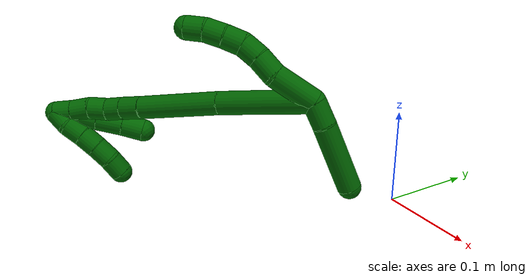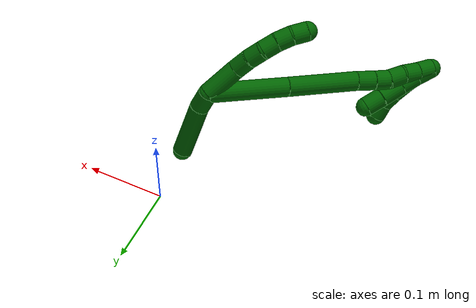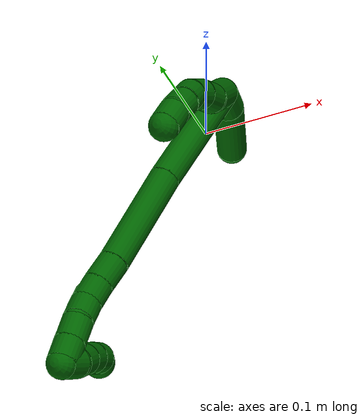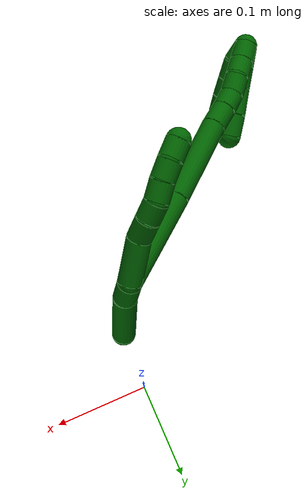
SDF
<sdf version="1.7">
 <world name="default">
  <model name="photoneo_s_sensor">
   <static>1</static>
   <pose>0 0 2 1.57079 1.57079 3.14159</pose>
   <link name="link">
    <inertial><mass>0.1</mass></inertial>
    <sensor name="sensor" type="depth">
     <update_rate>30</update_rate>
     <camera>
      <horizontal_fov>1.22</horizontal_fov>
      <image><width>1920</width><height>1200</height><format>B8G8R8</format></image>
      <clip><near>0.1</near><far>4</far></clip>
      <depth_camera><output>points</output></depth_camera>
     </camera>
     <plugin name="camera_plugin" filename="libgazebo_ros_depth_camera.so">
      <baseline>0.2</baseline>
      <alwaysOn>1</alwaysOn>
      <updateRate>0.0</updateRate>
      <cameraName>camera_ir</cameraName>
      <imageTopicName>/camera/color/image_raw</imageTopicName>
      <cameraInfoTopicName>/camera/color/camera_info</cameraInfoTopicName>
      <depthImageTopicName>/camera/depth/image_raw</depthImageTopicName>
      <depthImageCameraInfoTopicName>/camera/depth/camera_info</depthImageCameraInfoTopicName>
      <pointCloudTopicName>/camera/depth/points</pointCloudTopicName>
      <frameName>fr_optical</frameName>
      <pointCloudCutoff>0.1</pointCloudCutoff>
      <pointCloudCutoffMax>2.0</pointCloudCutoffMax>
      <distortionK1>0</distortionK1>
      <distortionK2>0</distortionK2>
      <distortionK3>0</distortionK3>
      <distortionT1>0</distortionT1>
      <distortionT2>0</distortionT2>
      <CxPrime>0</CxPrime>
      <Cx>0</Cx>
      <Cy>0</Cy>
      <focalLength>0</focalLength>
      <hackBaseline>0</hackBaseline>
     </plugin>
    </sensor>
   </link>
  </model>
  <model name="bin">
   <static>1</static>
   <link name="bottom">
    <collision name="collision-bottom">
     <pose>0 0 -0.01 0 -0 0</pose>
     <geometry><box><size>0.8 0.6 0.02</size></box></geometry>
     <surface>
      <friction><ode><mu>100</mu><mu2>100</mu2></ode></friction>
      <contact><collide_bitmask>65535</collide_bitmask></contact>
     </surface>
    </collision>
   </link>
   <link name="west_wall">
    <collision name="collision-west_wall">
     <pose>-0.41 0 0.1 0 -0 0</pose>
     <geometry><box><size>0.02 0.6 0.2</size></box></geometry>
     <surface>
      <friction><ode><mu>100</mu><mu2>100</mu2></ode></friction>
      <contact><collide_bitmask>65535</collide_bitmask></contact>
     </surface>
    </collision>
   </link>
   <link name="east_wall">
    <collision name="collision-east_wall">
     <pose>0.41 0 0.1 0 -0 0</pose>
     <geometry><box><size>0.02 0.6 0.2</size></box></geometry>
     <surface>
      <friction><ode><mu>100</mu><mu2>100</mu2></ode></friction>
      <contact><collide_bitmask>65535</collide_bitmask></contact>
     </surface>
    </collision>
   </link>
   <link name="south_wall">
    <collision name="collision-south_wall">
     <pose>0 -0.31 0.1 0 -0 0</pose>
     <geometry><box><size>0.8 0.02 0.2</size></box></geometry>
     <surface>
      <friction><ode><mu>100</mu><mu2>100</mu2></ode></friction>
      <contact><collide_bitmask>65535</collide_bitmask></contact>
     </surface>
    </collision>
   </link>
   <link name="north_wall">
    <collision name="collision-north_wall">
     <pose>0 0.31 0.1 0 -0 0</pose>
     <geometry><box><size>0.8 0.02 0.2</size></box></geometry>
     <surface>
      <friction><ode><mu>100</mu><mu2>100</mu2></ode></friction>
      <contact><collide_bitmask>65535</collide_bitmask></contact>
     </surface>
    </collision>
   </link>
  </model>
  <model name="6">
   <static>0</static>
   <link name="6">
    <collision name="collision-cylinder-e_1_2_8">
     <pose>0.001472 -0.007943 0.021973 0.346887 0.062901 0.011024</pose>
     <geometry><cylinder><radius>0.0125</radius><length>0.046822</length></cylinder></geometry>
     <surface>
      <friction><ode><mu>1.16</mu><mu2>1.16</mu2><slip1>0</slip1><slip2>0</slip2></ode></friction>
      <contact><ode><kp>1e+06</kp><kd>1</kd><max_vel>0</max_vel><min_depth>0.001</min_depth></ode></contact>
     </surface>
    </collision>
    <visual name="visual-cylinder-e_1_2_8">
     <pose>0.001472 -0.007943 0.021973 0.346887 0.062901 0.011024</pose>
     <geometry><cylinder><radius>0.0125</radius><length>0.046822</length></cylinder></geometry>
     <material><ambient>0 0.392157 0.003922 1</ambient></material>
    </visual>
    <collision name="collision-cylinder-e_2_8_9">
     <pose>0.003701 -0.016408 0.055449 0.045272 0.065752 0.001489</pose>
     <geometry><cylinder><radius>0.0125</radius><length>0.023079</length></cylinder></geometry>
     <surface>
      <friction><ode><mu>1.16</mu><mu2>1.16</mu2><slip1>0</slip1><slip2>0</slip2></ode></friction>
      <contact><ode><kp>1e+06</kp><kd>1</kd><max_vel>0</max_vel><min_depth>0.001</min_depth></ode></contact>
     </surface>
    </collision>
    <visual name="visual-cylinder-e_2_8_9">
     <pose>0.003701 -0.016408 0.055449 0.045272 0.065752 0.001489</pose>
     <geometry><cylinder><radius>0.0125</radius><length>0.023079</length></cylinder></geometry>
     <material><ambient>0 0.392157 0.003922 1</ambient></material>
    </visual>
    <collision name="collision-cylinder-e_3_9_10">
     <pose>0.003974 -0.018418 0.076864 0.149157 -0.04843 -0.003619</pose>
     <geometry><cylinder><radius>0.0125</radius><length>0.020069</length></cylinder></geometry>
     <surface>
      <friction><ode><mu>1.16</mu><mu2>1.16</mu2><slip1>0</slip1><slip2>0</slip2></ode></friction>
      <contact><ode><kp>1e+06</kp><kd>1</kd><max_vel>0</max_vel><min_depth>0.001</min_depth></ode></contact>
     </surface>
    </collision>
    <visual name="visual-cylinder-e_3_9_10">
     <pose>0.003974 -0.018418 0.076864 0.149157 -0.04843 -0.003619</pose>
     <geometry><cylinder><radius>0.0125</radius><length>0.020069</length></cylinder></geometry>
     <material><ambient>0 0.392157 0.003922 1</ambient></material>
    </visual>
    <collision name="collision-cylinder-e_4_10_11">
     <pose>0.002173 -0.024264 0.09569 0.454498 -0.131807 -0.030521</pose>
     <geometry><cylinder><radius>0.0125</radius><length>0.020017</length></cylinder></geometry>
     <surface>
      <friction><ode><mu>1.16</mu><mu2>1.16</mu2><slip1>0</slip1><slip2>0</slip2></ode></friction>
      <contact><ode><kp>1e+06</kp><kd>1</kd><max_vel>0</max_vel><min_depth>0.001</min_depth></ode></contact>
     </surface>
    </collision>
    <visual name="visual-cylinder-e_4_10_11">
     <pose>0.002173 -0.024264 0.09569 0.454498 -0.131807 -0.030521</pose>
     <geometry><cylinder><radius>0.0125</radius><length>0.020017</length></cylinder></geometry>
     <material><ambient>0 0.392157 0.003922 1</ambient></material>
    </visual>
    <collision name="collision-cylinder-e_5_11_12">
     <pose>-0.001686 -0.032906 0.113275 0.459094 -0.257099 -0.06039</pose>
     <geometry><cylinder><radius>0.0125</radius><length>0.020002</length></cylinder></geometry>
     <surface>
      <friction><ode><mu>1.16</mu><mu2>1.16</mu2><slip1>0</slip1><slip2>0</slip2></ode></friction>
      <contact><ode><kp>1e+06</kp><kd>1</kd><max_vel>0</max_vel><min_depth>0.001</min_depth></ode></contact>
     </surface>
    </collision>
    <visual name="visual-cylinder-e_5_11_12">
     <pose>-0.001686 -0.032906 0.113275 0.459094 -0.257099 -0.06039</pose>
     <geometry><cylinder><radius>0.0125</radius><length>0.020002</length></cylinder></geometry>
     <material><ambient>0 0.392157 0.003922 1</ambient></material>
    </visual>
    <collision name="collision-cylinder-e_6_12_6">
     <pose>-0.008397 -0.042358 0.129431 0.604115 -0.42976 -0.135801</pose>
     <geometry><cylinder><radius>0.0125</radius><length>0.02001</length></cylinder></geometry>
     <surface>
      <friction><ode><mu>1.16</mu><mu2>1.16</mu2><slip1>0</slip1><slip2>0</slip2></ode></friction>
      <contact><ode><kp>1e+06</kp><kd>1</kd><max_vel>0</max_vel><min_depth>0.001</min_depth></ode></contact>
     </surface>
    </collision>
    <visual name="visual-cylinder-e_6_12_6">
     <pose>-0.008397 -0.042358 0.129431 0.604115 -0.42976 -0.135801</pose>
     <geometry><cylinder><radius>0.0125</radius><length>0.02001</length></cylinder></geometry>
     <material><ambient>0 0.392157 0.003922 1</ambient></material>
    </visual>
    <collision name="collision-cylinder-e_1_2_13">
     <pose>-0.004821 -0.001552 -0.01213 3.01435 -0.375538 -2.49459</pose>
     <geometry><cylinder><radius>0.0125</radius><length>0.026289</length></cylinder></geometry>
     <surface>
      <friction><ode><mu>1.16</mu><mu2>1.16</mu2><slip1>0</slip1><slip2>0</slip2></ode></friction>
      <contact><ode><kp>1e+06</kp><kd>1</kd><max_vel>0</max_vel><min_depth>0.001</min_depth></ode></contact>
     </surface>
    </collision>
    <visual name="visual-cylinder-e_1_2_13">
     <pose>-0.004821 -0.001552 -0.01213 3.01435 -0.375538 -2.49459</pose>
     <geometry><cylinder><radius>0.0125</radius><length>0.026289</length></cylinder></geometry>
     <material><ambient>0 0.392157 0.003922 1</ambient></material>
    </visual>
    <collision name="collision-cylinder-e_2_13_5">
     <pose>-0.027973 -0.0055 -0.056143 3.06656 -0.520567 -2.86159</pose>
     <geometry><cylinder><radius>0.0125</radius><length>0.073711</length></cylinder></geometry>
     <surface>
      <friction><ode><mu>1.16</mu><mu2>1.16</mu2><slip1>0</slip1><slip2>0</slip2></ode></friction>
      <contact><ode><kp>1e+06</kp><kd>1</kd><max_vel>0</max_vel><min_depth>0.001</min_depth></ode></contact>
     </surface>
    </collision>
    <visual name="visual-cylinder-e_2_13_5">
     <pose>-0.027973 -0.0055 -0.056143 3.06656 -0.520567 -2.86159</pose>
     <geometry><cylinder><radius>0.0125</radius><length>0.073711</length></cylinder></geometry>
     <material><ambient>0 0.392157 0.003922 1</ambient></material>
    </visual>
    <collision name="collision-cylinder-e_1_2_14">
     <pose>-0.029795 -0.026014 0.032229 0.679096 -0.623603 -0.226725</pose>
     <geometry><cylinder><radius>0.0125</radius><length>0.102042</length></cylinder></geometry>
     <surface>
      <friction><ode><mu>1.16</mu><mu2>1.16</mu2><slip1>0</slip1><slip2>0</slip2></ode></friction>
      <contact><ode><kp>1e+06</kp><kd>1</kd><max_vel>0</max_vel><min_depth>0.001</min_depth></ode></contact>
     </surface>
    </collision>
    <visual name="visual-cylinder-e_1_2_14">
     <pose>-0.029795 -0.026014 0.032229 0.679096 -0.623603 -0.226725</pose>
     <geometry><cylinder><radius>0.0125</radius><length>0.102042</length></cylinder></geometry>
     <material><ambient>0 0.392157 0.003922 1</ambient></material>
    </visual>
    <collision name="collision-cylinder-e_2_14_15">
     <pose>-0.086264 -0.077052 0.092237 0.733267 -0.61971 -0.244658</pose>
     <geometry><cylinder><radius>0.0125</radius><length>0.091856</length></cylinder></geometry>
     <surface>
      <friction><ode><mu>1.16</mu><mu2>1.16</mu2><slip1>0</slip1><slip2>0</slip2></ode></friction>
      <contact><ode><kp>1e+06</kp><kd>1</kd><max_vel>0</max_vel><min_depth>0.001</min_depth></ode></contact>
     </surface>
    </collision>
    <visual name="visual-cylinder-e_2_14_15">
     <pose>-0.086264 -0.077052 0.092237 0.733267 -0.61971 -0.244658</pose>
     <geometry><cylinder><radius>0.0125</radius><length>0.091856</length></cylinder></geometry>
     <material><ambient>0 0.392157 0.003922 1</ambient></material>
    </visual>
    <collision name="collision-cylinder-e_3_15_16">
     <pose>-0.120345 -0.107917 0.12728 0.677244 -0.671342 -0.244512</pose>
     <geometry><cylinder><radius>0.0125</radius><length>0.023811</length></cylinder></geometry>
     <surface>
      <friction><ode><mu>1.16</mu><mu2>1.16</mu2><slip1>0</slip1><slip2>0</slip2></ode></friction>
      <contact><ode><kp>1e+06</kp><kd>1</kd><max_vel>0</max_vel><min_depth>0.001</min_depth></ode></contact>
     </surface>
    </collision>
    <visual name="visual-cylinder-e_3_15_16">
     <pose>-0.120345 -0.107917 0.12728 0.677244 -0.671342 -0.244512</pose>
     <geometry><cylinder><radius>0.0125</radius><length>0.023811</length></cylinder></geometry>
     <material><ambient>0 0.392157 0.003922 1</ambient></material>
    </visual>
    <collision name="collision-cylinder-e_4_16_17">
     <pose>-0.133758 -0.119168 0.140521 0.735678 -0.640433 -0.254228</pose>
     <geometry><cylinder><radius>0.0125</radius><length>0.020106</length></cylinder></geometry>
     <surface>
      <friction><ode><mu>1.16</mu><mu2>1.16</mu2><slip1>0</slip1><slip2>0</slip2></ode></friction>
      <contact><ode><kp>1e+06</kp><kd>1</kd><max_vel>0</max_vel><min_depth>0.001</min_depth></ode></contact>
     </surface>
    </collision>
    <visual name="visual-cylinder-e_4_16_17">
     <pose>-0.133758 -0.119168 0.140521 0.735678 -0.640433 -0.254228</pose>
     <geometry><cylinder><radius>0.0125</radius><length>0.020106</length></cylinder></geometry>
     <material><ambient>0 0.392157 0.003922 1</ambient></material>
    </visual>
    <collision name="collision-cylinder-e_5_17_18">
     <pose>-0.14365 -0.130784 0.153681 0.712534 -0.388429 -0.146137</pose>
     <geometry><cylinder><radius>0.0125</radius><length>0.020515</length></cylinder></geometry>
     <surface>
      <friction><ode><mu>1.16</mu><mu2>1.16</mu2><slip1>0</slip1><slip2>0</slip2></ode></friction>
      <contact><ode><kp>1e+06</kp><kd>1</kd><max_vel>0</max_vel><min_depth>0.001</min_depth></ode></contact>
     </surface>
    </collision>
    <visual name="visual-cylinder-e_5_17_18">
     <pose>-0.14365 -0.130784 0.153681 0.712534 -0.388429 -0.146137</pose>
     <geometry><cylinder><radius>0.0125</radius><length>0.020515</length></cylinder></geometry>
     <material><ambient>0 0.392157 0.003922 1</ambient></material>
    </visual>
    <collision name="collision-cylinder-e_6_18_19">
     <pose>-0.152909 -0.144088 0.166417 0.906919 -0.537818 -0.267002</pose>
     <geometry><cylinder><radius>0.0125</radius><length>0.020984</length></cylinder></geometry>
     <surface>
      <friction><ode><mu>1.16</mu><mu2>1.16</mu2><slip1>0</slip1><slip2>0</slip2></ode></friction>
      <contact><ode><kp>1e+06</kp><kd>1</kd><max_vel>0</max_vel><min_depth>0.001</min_depth></ode></contact>
     </surface>
    </collision>
    <visual name="visual-cylinder-e_6_18_19">
     <pose>-0.152909 -0.144088 0.166417 0.906919 -0.537818 -0.267002</pose>
     <geometry><cylinder><radius>0.0125</radius><length>0.020984</length></cylinder></geometry>
     <material><ambient>0 0.392157 0.003922 1</ambient></material>
    </visual>
    <collision name="collision-cylinder-e_7_19_1">
     <pose>-0.162945 -0.158074 0.178116 0.842314 -0.467518 -0.212526</pose>
     <geometry><cylinder><radius>0.0125</radius><length>0.020685</length></cylinder></geometry>
     <surface>
      <friction><ode><mu>1.16</mu><mu2>1.16</mu2><slip1>0</slip1><slip2>0</slip2></ode></friction>
      <contact><ode><kp>1e+06</kp><kd>1</kd><max_vel>0</max_vel><min_depth>0.001</min_depth></ode></contact>
     </surface>
    </collision>
    <visual name="visual-cylinder-e_7_19_1">
     <pose>-0.162945 -0.158074 0.178116 0.842314 -0.467518 -0.212526</pose>
     <geometry><cylinder><radius>0.0125</radius><length>0.020685</length></cylinder></geometry>
     <material><ambient>0 0.392157 0.003922 1</ambient></material>
    </visual>
    <collision name="collision-cylinder-e_1_1_20">
     <pose>-0.164692 -0.157342 0.175552 -2.42274 0.246647 -0.637281</pose>
     <geometry><cylinder><radius>0.0125</radius><length>0.02387</length></cylinder></geometry>
     <surface>
      <friction><ode><mu>1.16</mu><mu2>1.16</mu2><slip1>0</slip1><slip2>0</slip2></ode></friction>
      <contact><ode><kp>1e+06</kp><kd>1</kd><max_vel>0</max_vel><min_depth>0.001</min_depth></ode></contact>
     </surface>
    </collision>
    <visual name="visual-cylinder-e_1_1_20">
     <pose>-0.164692 -0.157342 0.175552 -2.42274 0.246647 -0.637281</pose>
     <geometry><cylinder><radius>0.0125</radius><length>0.02387</length></cylinder></geometry>
     <material><ambient>0 0.392157 0.003922 1</ambient></material>
    </visual>
    <collision name="collision-cylinder-e_2_20_21">
     <pose>-0.159852 -0.14295 0.157695 -2.50449 0.167679 -0.499029</pose>
     <geometry><cylinder><radius>0.0125</radius><length>0.023084</length></cylinder></geometry>
     <surface>
      <friction><ode><mu>1.16</mu><mu2>1.16</mu2><slip1>0</slip1><slip2>0</slip2></ode></friction>
      <contact><ode><kp>1e+06</kp><kd>1</kd><max_vel>0</max_vel><min_depth>0.001</min_depth></ode></contact>
     </surface>
    </collision>
    <visual name="visual-cylinder-e_2_20_21">
     <pose>-0.159852 -0.14295 0.157695 -2.50449 0.167679 -0.499029</pose>
     <geometry><cylinder><radius>0.0125</radius><length>0.023084</length></cylinder></geometry>
     <material><ambient>0 0.392157 0.003922 1</ambient></material>
    </visual>
    <collision name="collision-cylinder-e_3_21_22">
     <pose>-0.155693 -0.127482 0.137117 -2.49104 0.15417 -0.450274</pose>
     <geometry><cylinder><radius>0.0125</radius><length>0.029073</length></cylinder></geometry>
     <surface>
      <friction><ode><mu>1.16</mu><mu2>1.16</mu2><slip1>0</slip1><slip2>0</slip2></ode></friction>
      <contact><ode><kp>1e+06</kp><kd>1</kd><max_vel>0</max_vel><min_depth>0.001</min_depth></ode></contact>
     </surface>
    </collision>
    <visual name="visual-cylinder-e_3_21_22">
     <pose>-0.155693 -0.127482 0.137117 -2.49104 0.15417 -0.450274</pose>
     <geometry><cylinder><radius>0.0125</radius><length>0.029073</length></cylinder></geometry>
     <material><ambient>0 0.392157 0.003922 1</ambient></material>
    </visual>
    <collision name="collision-cylinder-e_4_22_4">
     <pose>-0.151541 -0.1122 0.115855 -2.55166 0.160863 -0.518649</pose>
     <geometry><cylinder><radius>0.0125</radius><length>0.023973</length></cylinder></geometry>
     <surface>
      <friction><ode><mu>1.16</mu><mu2>1.16</mu2><slip1>0</slip1><slip2>0</slip2></ode></friction>
      <contact><ode><kp>1e+06</kp><kd>1</kd><max_vel>0</max_vel><min_depth>0.001</min_depth></ode></contact>
     </surface>
    </collision>
    <visual name="visual-cylinder-e_4_22_4">
     <pose>-0.151541 -0.1122 0.115855 -2.55166 0.160863 -0.518649</pose>
     <geometry><cylinder><radius>0.0125</radius><length>0.023973</length></cylinder></geometry>
     <material><ambient>0 0.392157 0.003922 1</ambient></material>
    </visual>
    <collision name="collision-cylinder-e_1_1_23">
     <pose>-0.166349 -0.164702 0.174345 -3.11531 0.126017 -2.73095</pose>
     <geometry><cylinder><radius>0.0125</radius><length>0.02</length></cylinder></geometry>
     <surface>
      <friction><ode><mu>1.16</mu><mu2>1.16</mu2><slip1>0</slip1><slip2>0</slip2></ode></friction>
      <contact><ode><kp>1e+06</kp><kd>1</kd><max_vel>0</max_vel><min_depth>0.001</min_depth></ode></contact>
     </surface>
    </collision>
    <visual name="visual-cylinder-e_1_1_23">
     <pose>-0.166349 -0.164702 0.174345 -3.11531 0.126017 -2.73095</pose>
     <geometry><cylinder><radius>0.0125</radius><length>0.02</length></cylinder></geometry>
     <material><ambient>0 0.392157 0.003922 1</ambient></material>
    </visual>
    <collision name="collision-cylinder-e_2_23_24">
     <pose>-0.16541 -0.161775 0.154795 -2.87147 -0.031808 0.233026</pose>
     <geometry><cylinder><radius>0.0125</radius><length>0.02</length></cylinder></geometry>
     <surface>
      <friction><ode><mu>1.16</mu><mu2>1.16</mu2><slip1>0</slip1><slip2>0</slip2></ode></friction>
      <contact><ode><kp>1e+06</kp><kd>1</kd><max_vel>0</max_vel><min_depth>0.001</min_depth></ode></contact>
     </surface>
    </collision>
    <visual name="visual-cylinder-e_2_23_24">
     <pose>-0.16541 -0.161775 0.154795 -2.87147 -0.031808 0.233026</pose>
     <geometry><cylinder><radius>0.0125</radius><length>0.02</length></cylinder></geometry>
     <material><ambient>0 0.392157 0.003922 1</ambient></material>
    </visual>
    <collision name="collision-cylinder-e_3_24_25">
     <pose>-0.166557 -0.15698 0.135427 -2.92642 -0.08293 0.733529</pose>
     <geometry><cylinder><radius>0.0125</radius><length>0.02</length></cylinder></geometry>
     <surface>
      <friction><ode><mu>1.16</mu><mu2>1.16</mu2><slip1>0</slip1><slip2>0</slip2></ode></friction>
      <contact><ode><kp>1e+06</kp><kd>1</kd><max_vel>0</max_vel><min_depth>0.001</min_depth></ode></contact>
     </surface>
    </collision>
    <visual name="visual-cylinder-e_3_24_25">
     <pose>-0.166557 -0.15698 0.135427 -2.92642 -0.08293 0.733529</pose>
     <geometry><cylinder><radius>0.0125</radius><length>0.02</length></cylinder></geometry>
     <material><ambient>0 0.392157 0.003922 1</ambient></material>
    </visual>
    <collision name="collision-cylinder-e_4_25_26">
     <pose>-0.16905 -0.152962 0.116013 -2.9488 -0.167305 1.4287</pose>
     <geometry><cylinder><radius>0.0125</radius><length>0.02</length></cylinder></geometry>
     <surface>
      <friction><ode><mu>1.16</mu><mu2>1.16</mu2><slip1>0</slip1><slip2>0</slip2></ode></friction>
      <contact><ode><kp>1e+06</kp><kd>1</kd><max_vel>0</max_vel><min_depth>0.001</min_depth></ode></contact>
     </surface>
    </collision>
    <visual name="visual-cylinder-e_4_25_26">
     <pose>-0.16905 -0.152962 0.116013 -2.9488 -0.167305 1.4287</pose>
     <geometry><cylinder><radius>0.0125</radius><length>0.02</length></cylinder></geometry>
     <material><ambient>0 0.392157 0.003922 1</ambient></material>
    </visual>
    <collision name="collision-cylinder-e_5_26_3">
     <pose>-0.174869 -0.149638 0.097353 -2.98321 -0.428318 2.44188</pose>
     <geometry><cylinder><radius>0.0125</radius><length>0.02</length></cylinder></geometry>
     <surface>
      <friction><ode><mu>1.16</mu><mu2>1.16</mu2><slip1>0</slip1><slip2>0</slip2></ode></friction>
      <contact><ode><kp>1e+06</kp><kd>1</kd><max_vel>0</max_vel><min_depth>0.001</min_depth></ode></contact>
     </surface>
    </collision>
    <visual name="visual-cylinder-e_5_26_3">
     <pose>-0.174869 -0.149638 0.097353 -2.98321 -0.428318 2.44188</pose>
     <geometry><cylinder><radius>0.0125</radius><length>0.02</length></cylinder></geometry>
     <material><ambient>0 0.392157 0.003922 1</ambient></material>
    </visual>
    <collision name="collision-sphere-3">
     <pose>-0.179022 -0.148204 0.08837 0 -0 0</pose>
     <geometry><sphere><radius>0.0125</radius></sphere></geometry>
     <surface>
      <friction><ode><mu>1.16</mu><mu2>1.16</mu2><slip1>0</slip1><slip2>0</slip2></ode></friction>
      <contact><ode><kp>1e+06</kp><kd>1</kd><max_vel>0</max_vel><min_depth>0.001</min_depth></ode></contact>
     </surface>
    </collision>
    <visual name="visual-sphere-3">
     <pose>-0.179022 -0.148204 0.08837 0 -0 0</pose>
     <geometry><sphere><radius>0.0125</radius></sphere></geometry>
     <material><ambient>0 0.392157 0.003922 1</ambient></material>
    </visual>
    <collision name="collision-sphere-26">
     <pose>-0.170716 -0.151073 0.106335 0 -0 0</pose>
     <geometry><sphere><radius>0.0125</radius></sphere></geometry>
     <surface>
      <friction><ode><mu>1.16</mu><mu2>1.16</mu2><slip1>0</slip1><slip2>0</slip2></ode></friction>
      <contact><ode><kp>1e+06</kp><kd>1</kd><max_vel>0</max_vel><min_depth>0.001</min_depth></ode></contact>
     </surface>
    </collision>
    <visual name="visual-sphere-26">
     <pose>-0.170716 -0.151073 0.106335 0 -0 0</pose>
     <geometry><sphere><radius>0.0125</radius></sphere></geometry>
     <material><ambient>0 0.392157 0.003922 1</ambient></material>
    </visual>
    <collision name="collision-sphere-25">
     <pose>-0.167385 -0.154852 0.125691 0 -0 0</pose>
     <geometry><sphere><radius>0.0125</radius></sphere></geometry>
     <surface>
      <friction><ode><mu>1.16</mu><mu2>1.16</mu2><slip1>0</slip1><slip2>0</slip2></ode></friction>
      <contact><ode><kp>1e+06</kp><kd>1</kd><max_vel>0</max_vel><min_depth>0.001</min_depth></ode></contact>
     </surface>
    </collision>
    <visual name="visual-sphere-25">
     <pose>-0.167385 -0.154852 0.125691 0 -0 0</pose>
     <geometry><sphere><radius>0.0125</radius></sphere></geometry>
     <material><ambient>0 0.392157 0.003922 1</ambient></material>
    </visual>
    <collision name="collision-sphere-24">
     <pose>-0.165728 -0.159107 0.145163 0 -0 0</pose>
     <geometry><sphere><radius>0.0125</radius></sphere></geometry>
     <surface>
      <friction><ode><mu>1.16</mu><mu2>1.16</mu2><slip1>0</slip1><slip2>0</slip2></ode></friction>
      <contact><ode><kp>1e+06</kp><kd>1</kd><max_vel>0</max_vel><min_depth>0.001</min_depth></ode></contact>
     </surface>
    </collision>
    <visual name="visual-sphere-24">
     <pose>-0.165728 -0.159107 0.145163 0 -0 0</pose>
     <geometry><sphere><radius>0.0125</radius></sphere></geometry>
     <material><ambient>0 0.392157 0.003922 1</ambient></material>
    </visual>
    <collision name="collision-sphere-23">
     <pose>-0.165092 -0.164442 0.164427 0 -0 0</pose>
     <geometry><sphere><radius>0.0125</radius></sphere></geometry>
     <surface>
      <friction><ode><mu>1.16</mu><mu2>1.16</mu2><slip1>0</slip1><slip2>0</slip2></ode></friction>
      <contact><ode><kp>1e+06</kp><kd>1</kd><max_vel>0</max_vel><min_depth>0.001</min_depth></ode></contact>
     </surface>
    </collision>
    <visual name="visual-sphere-23">
     <pose>-0.165092 -0.164442 0.164427 0 -0 0</pose>
     <geometry><sphere><radius>0.0125</radius></sphere></geometry>
     <material><ambient>0 0.392157 0.003922 1</ambient></material>
    </visual>
    <collision name="collision-sphere-4">
     <pose>-0.149621 -0.105618 0.106023 0 -0 0</pose>
     <geometry><sphere><radius>0.0125</radius></sphere></geometry>
     <surface>
      <friction><ode><mu>1.16</mu><mu2>1.16</mu2><slip1>0</slip1><slip2>0</slip2></ode></friction>
      <contact><ode><kp>1e+06</kp><kd>1</kd><max_vel>0</max_vel><min_depth>0.001</min_depth></ode></contact>
     </surface>
    </collision>
    <visual name="visual-sphere-4">
     <pose>-0.149621 -0.105618 0.106023 0 -0 0</pose>
     <geometry><sphere><radius>0.0125</radius></sphere></geometry>
     <material><ambient>0 0.392157 0.003922 1</ambient></material>
    </visual>
    <collision name="collision-sphere-22">
     <pose>-0.153461 -0.118782 0.125687 0 -0 0</pose>
     <geometry><sphere><radius>0.0125</radius></sphere></geometry>
     <surface>
      <friction><ode><mu>1.16</mu><mu2>1.16</mu2><slip1>0</slip1><slip2>0</slip2></ode></friction>
      <contact><ode><kp>1e+06</kp><kd>1</kd><max_vel>0</max_vel><min_depth>0.001</min_depth></ode></contact>
     </surface>
    </collision>
    <visual name="visual-sphere-22">
     <pose>-0.153461 -0.118782 0.125687 0 -0 0</pose>
     <geometry><sphere><radius>0.0125</radius></sphere></geometry>
     <material><ambient>0 0.392157 0.003922 1</ambient></material>
    </visual>
    <collision name="collision-sphere-21">
     <pose>-0.157926 -0.136181 0.148547 0 -0 0</pose>
     <geometry><sphere><radius>0.0125</radius></sphere></geometry>
     <surface>
      <friction><ode><mu>1.16</mu><mu2>1.16</mu2><slip1>0</slip1><slip2>0</slip2></ode></friction>
      <contact><ode><kp>1e+06</kp><kd>1</kd><max_vel>0</max_vel><min_depth>0.001</min_depth></ode></contact>
     </surface>
    </collision>
    <visual name="visual-sphere-21">
     <pose>-0.157926 -0.136181 0.148547 0 -0 0</pose>
     <geometry><sphere><radius>0.0125</radius></sphere></geometry>
     <material><ambient>0 0.392157 0.003922 1</ambient></material>
    </visual>
    <collision name="collision-sphere-20">
     <pose>-0.161778 -0.14972 0.166842 0 -0 0</pose>
     <geometry><sphere><radius>0.0125</radius></sphere></geometry>
     <surface>
      <friction><ode><mu>1.16</mu><mu2>1.16</mu2><slip1>0</slip1><slip2>0</slip2></ode></friction>
      <contact><ode><kp>1e+06</kp><kd>1</kd><max_vel>0</max_vel><min_depth>0.001</min_depth></ode></contact>
     </surface>
    </collision>
    <visual name="visual-sphere-20">
     <pose>-0.161778 -0.14972 0.166842 0 -0 0</pose>
     <geometry><sphere><radius>0.0125</radius></sphere></geometry>
     <material><ambient>0 0.392157 0.003922 1</ambient></material>
    </visual>
    <collision name="collision-sphere-12">
     <pose>-0.004229 -0.037192 0.121946 0 -0 0</pose>
     <geometry><sphere><radius>0.0125</radius></sphere></geometry>
     <surface>
      <friction><ode><mu>1.16</mu><mu2>1.16</mu2><slip1>0</slip1><slip2>0</slip2></ode></friction>
      <contact><ode><kp>1e+06</kp><kd>1</kd><max_vel>0</max_vel><min_depth>0.001</min_depth></ode></contact>
     </surface>
    </collision>
    <visual name="visual-sphere-12">
     <pose>-0.004229 -0.037192 0.121946 0 -0 0</pose>
     <geometry><sphere><radius>0.0125</radius></sphere></geometry>
     <material><ambient>0 0.392157 0.003922 1</ambient></material>
    </visual>
    <collision name="collision-sphere-11">
     <pose>0.000857 -0.028619 0.104604 0 -0 0</pose>
     <geometry><sphere><radius>0.0125</radius></sphere></geometry>
     <surface>
      <friction><ode><mu>1.16</mu><mu2>1.16</mu2><slip1>0</slip1><slip2>0</slip2></ode></friction>
      <contact><ode><kp>1e+06</kp><kd>1</kd><max_vel>0</max_vel><min_depth>0.001</min_depth></ode></contact>
     </surface>
    </collision>
    <visual name="visual-sphere-11">
     <pose>0.000857 -0.028619 0.104604 0 -0 0</pose>
     <geometry><sphere><radius>0.0125</radius></sphere></geometry>
     <material><ambient>0 0.392157 0.003922 1</ambient></material>
    </visual>
    <collision name="collision-sphere-10">
     <pose>0.003488 -0.019908 0.086776 0 -0 0</pose>
     <geometry><sphere><radius>0.0125</radius></sphere></geometry>
     <surface>
      <friction><ode><mu>1.16</mu><mu2>1.16</mu2><slip1>0</slip1><slip2>0</slip2></ode></friction>
      <contact><ode><kp>1e+06</kp><kd>1</kd><max_vel>0</max_vel><min_depth>0.001</min_depth></ode></contact>
     </surface>
    </collision>
    <visual name="visual-sphere-10">
     <pose>0.003488 -0.019908 0.086776 0 -0 0</pose>
     <geometry><sphere><radius>0.0125</radius></sphere></geometry>
     <material><ambient>0 0.392157 0.003922 1</ambient></material>
    </visual>
    <collision name="collision-sphere-9">
     <pose>0.00446 -0.016929 0.066952 0 -0 0</pose>
     <geometry><sphere><radius>0.0125</radius></sphere></geometry>
     <surface>
      <friction><ode><mu>1.16</mu><mu2>1.16</mu2><slip1>0</slip1><slip2>0</slip2></ode></friction>
      <contact><ode><kp>1e+06</kp><kd>1</kd><max_vel>0</max_vel><min_depth>0.001</min_depth></ode></contact>
     </surface>
    </collision>
    <visual name="visual-sphere-9">
     <pose>0.00446 -0.016929 0.066952 0 -0 0</pose>
     <geometry><sphere><radius>0.0125</radius></sphere></geometry>
     <material><ambient>0 0.392157 0.003922 1</ambient></material>
    </visual>
    <collision name="collision-sphere-2">
     <geometry><sphere><radius>0.0125</radius></sphere></geometry>
     <surface>
      <friction><ode><mu>1.16</mu><mu2>1.16</mu2><slip1>0</slip1><slip2>0</slip2></ode></friction>
      <contact><ode><kp>1e+06</kp><kd>1</kd><max_vel>0</max_vel><min_depth>0.001</min_depth></ode></contact>
     </surface>
    </collision>
    <visual name="visual-sphere-2">
     <geometry><sphere><radius>0.0125</radius></sphere></geometry>
     <material><ambient>0 0.392157 0.003922 1</ambient></material>
    </visual>
    <collision name="collision-sphere-19">
     <pose>-0.158284 -0.151185 0.171969 0 -0 0</pose>
     <geometry><sphere><radius>0.0125</radius></sphere></geometry>
     <surface>
      <friction><ode><mu>1.16</mu><mu2>1.16</mu2><slip1>0</slip1><slip2>0</slip2></ode></friction>
      <contact><ode><kp>1e+06</kp><kd>1</kd><max_vel>0</max_vel><min_depth>0.001</min_depth></ode></contact>
     </surface>
    </collision>
    <visual name="visual-sphere-19">
     <pose>-0.158284 -0.151185 0.171969 0 -0 0</pose>
     <geometry><sphere><radius>0.0125</radius></sphere></geometry>
     <material><ambient>0 0.392157 0.003922 1</ambient></material>
    </visual>
    <collision name="collision-sphere-8">
     <pose>0.002943 -0.015887 0.043946 0 -0 0</pose>
     <geometry><sphere><radius>0.0125</radius></sphere></geometry>
     <surface>
      <friction><ode><mu>1.16</mu><mu2>1.16</mu2><slip1>0</slip1><slip2>0</slip2></ode></friction>
      <contact><ode><kp>1e+06</kp><kd>1</kd><max_vel>0</max_vel><min_depth>0.001</min_depth></ode></contact>
     </surface>
    </collision>
    <visual name="visual-sphere-8">
     <pose>0.002943 -0.015887 0.043946 0 -0 0</pose>
     <geometry><sphere><radius>0.0125</radius></sphere></geometry>
     <material><ambient>0 0.392157 0.003922 1</ambient></material>
    </visual>
    <collision name="collision-sphere-6">
     <pose>-0.012566 -0.047524 0.136917 0 -0 0</pose>
     <geometry><sphere><radius>0.0125</radius></sphere></geometry>
     <surface>
      <friction><ode><mu>1.16</mu><mu2>1.16</mu2><slip1>0</slip1><slip2>0</slip2></ode></friction>
      <contact><ode><kp>1e+06</kp><kd>1</kd><max_vel>0</max_vel><min_depth>0.001</min_depth></ode></contact>
     </surface>
    </collision>
    <visual name="visual-sphere-6">
     <pose>-0.012566 -0.047524 0.136917 0 -0 0</pose>
     <geometry><sphere><radius>0.0125</radius></sphere></geometry>
     <material><ambient>0 0.392157 0.003922 1</ambient></material>
    </visual>
    <collision name="collision-sphere-13">
     <pose>-0.009642 -0.003103 -0.024259 0 -0 0</pose>
     <geometry><sphere><radius>0.0125</radius></sphere></geometry>
     <surface>
      <friction><ode><mu>1.16</mu><mu2>1.16</mu2><slip1>0</slip1><slip2>0</slip2></ode></friction>
      <contact><ode><kp>1e+06</kp><kd>1</kd><max_vel>0</max_vel><min_depth>0.001</min_depth></ode></contact>
     </surface>
    </collision>
    <visual name="visual-sphere-13">
     <pose>-0.009642 -0.003103 -0.024259 0 -0 0</pose>
     <geometry><sphere><radius>0.0125</radius></sphere></geometry>
     <material><ambient>0 0.392157 0.003922 1</ambient></material>
    </visual>
    <collision name="collision-sphere-5">
     <pose>-0.046304 -0.007897 -0.088026 0 -0 0</pose>
     <geometry><sphere><radius>0.0125</radius></sphere></geometry>
     <surface>
      <friction><ode><mu>1.16</mu><mu2>1.16</mu2><slip1>0</slip1><slip2>0</slip2></ode></friction>
      <contact><ode><kp>1e+06</kp><kd>1</kd><max_vel>0</max_vel><min_depth>0.001</min_depth></ode></contact>
     </surface>
    </collision>
    <visual name="visual-sphere-5">
     <pose>-0.046304 -0.007897 -0.088026 0 -0 0</pose>
     <geometry><sphere><radius>0.0125</radius></sphere></geometry>
     <material><ambient>0 0.392157 0.003922 1</ambient></material>
    </visual>
    <collision name="collision-sphere-14">
     <pose>-0.059589 -0.052028 0.064458 0 -0 0</pose>
     <geometry><sphere><radius>0.0125</radius></sphere></geometry>
     <surface>
      <friction><ode><mu>1.16</mu><mu2>1.16</mu2><slip1>0</slip1><slip2>0</slip2></ode></friction>
      <contact><ode><kp>1e+06</kp><kd>1</kd><max_vel>0</max_vel><min_depth>0.001</min_depth></ode></contact>
     </surface>
    </collision>
    <visual name="visual-sphere-14">
     <pose>-0.059589 -0.052028 0.064458 0 -0 0</pose>
     <geometry><sphere><radius>0.0125</radius></sphere></geometry>
     <material><ambient>0 0.392157 0.003922 1</ambient></material>
    </visual>
    <collision name="collision-sphere-15">
     <pose>-0.112939 -0.102075 0.120015 0 -0 0</pose>
     <geometry><sphere><radius>0.0125</radius></sphere></geometry>
     <surface>
      <friction><ode><mu>1.16</mu><mu2>1.16</mu2><slip1>0</slip1><slip2>0</slip2></ode></friction>
      <contact><ode><kp>1e+06</kp><kd>1</kd><max_vel>0</max_vel><min_depth>0.001</min_depth></ode></contact>
     </surface>
    </collision>
    <visual name="visual-sphere-15">
     <pose>-0.112939 -0.102075 0.120015 0 -0 0</pose>
     <geometry><sphere><radius>0.0125</radius></sphere></geometry>
     <material><ambient>0 0.392157 0.003922 1</ambient></material>
    </visual>
    <collision name="collision-sphere-16">
     <pose>-0.127751 -0.113759 0.134545 0 -0 0</pose>
     <geometry><sphere><radius>0.0125</radius></sphere></geometry>
     <surface>
      <friction><ode><mu>1.16</mu><mu2>1.16</mu2><slip1>0</slip1><slip2>0</slip2></ode></friction>
      <contact><ode><kp>1e+06</kp><kd>1</kd><max_vel>0</max_vel><min_depth>0.001</min_depth></ode></contact>
     </surface>
    </collision>
    <visual name="visual-sphere-16">
     <pose>-0.127751 -0.113759 0.134545 0 -0 0</pose>
     <geometry><sphere><radius>0.0125</radius></sphere></geometry>
     <material><ambient>0 0.392157 0.003922 1</ambient></material>
    </visual>
    <collision name="collision-sphere-17">
     <pose>-0.139765 -0.124578 0.146497 0 -0 0</pose>
     <geometry><sphere><radius>0.0125</radius></sphere></geometry>
     <surface>
      <friction><ode><mu>1.16</mu><mu2>1.16</mu2><slip1>0</slip1><slip2>0</slip2></ode></friction>
      <contact><ode><kp>1e+06</kp><kd>1</kd><max_vel>0</max_vel><min_depth>0.001</min_depth></ode></contact>
     </surface>
    </collision>
    <visual name="visual-sphere-17">
     <pose>-0.139765 -0.124578 0.146497 0 -0 0</pose>
     <geometry><sphere><radius>0.0125</radius></sphere></geometry>
     <material><ambient>0 0.392157 0.003922 1</ambient></material>
    </visual>
    <collision name="collision-sphere-18">
     <pose>-0.147535 -0.136991 0.160865 0 -0 0</pose>
     <geometry><sphere><radius>0.0125</radius></sphere></geometry>
     <surface>
      <friction><ode><mu>1.16</mu><mu2>1.16</mu2><slip1>0</slip1><slip2>0</slip2></ode></friction>
      <contact><ode><kp>1e+06</kp><kd>1</kd><max_vel>0</max_vel><min_depth>0.001</min_depth></ode></contact>
     </surface>
    </collision>
    <visual name="visual-sphere-18">
     <pose>-0.147535 -0.136991 0.160865 0 -0 0</pose>
     <geometry><sphere><radius>0.0125</radius></sphere></geometry>
     <material><ambient>0 0.392157 0.003922 1</ambient></material>
    </visual>
    <collision name="collision-sphere-1">
     <pose>-0.167606 -0.164963 0.184262 0 -0 0</pose>
     <geometry><sphere><radius>0.0125</radius></sphere></geometry>
     <surface>
      <friction><ode><mu>1.16</mu><mu2>1.16</mu2><slip1>0</slip1><slip2>0</slip2></ode></friction>
      <contact><ode><kp>1e+06</kp><kd>1</kd><max_vel>0</max_vel><min_depth>0.001</min_depth></ode></contact>
     </surface>
    </collision>
    <visual name="visual-sphere-1">
     <pose>-0.167606 -0.164963 0.184262 0 -0 0</pose>
     <geometry><sphere><radius>0.0125</radius></sphere></geometry>
     <material><ambient>0 0.392157 0.003922 1</ambient></material>
    </visual>
    <inertial>
     <pose>-0.081045 -0.075207 0.083019 0 -0 0</pose>
     <mass>0.75</mass>
     <inertia>
      <ixx>6.7e-05</ixx>
      <ixy>0</ixy>
      <ixz>0</ixz>
      <iyy>0.000133</iyy>
      <iyz>0</iyz>
      <izz>0.000212</izz>
     </inertia>
    </inertial>
   </link>
   <pose>-0.025001 -0.09025 0.121475 0.494295 -0.702662 -0.175495</pose>
  </model>
 </world>
</sdf>
